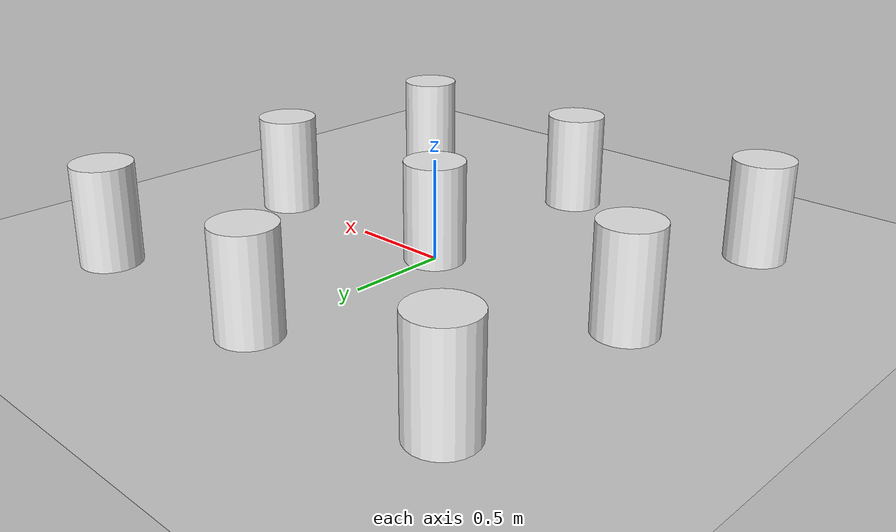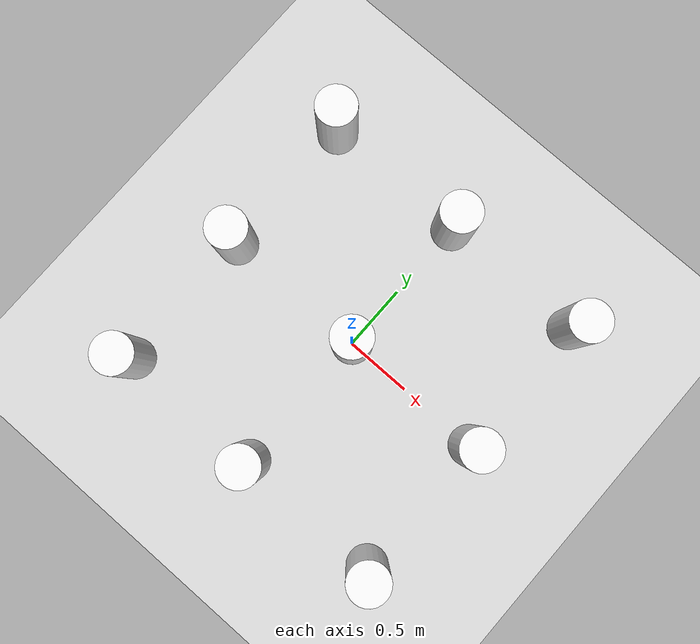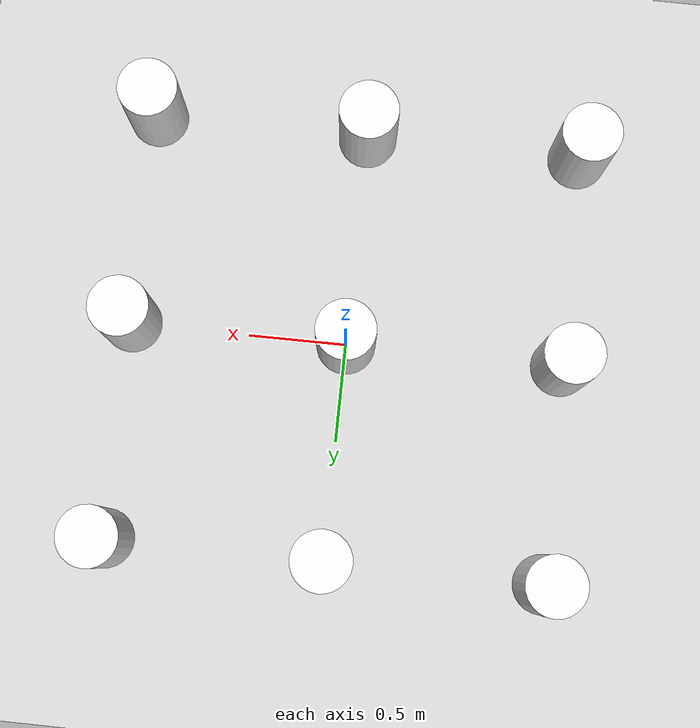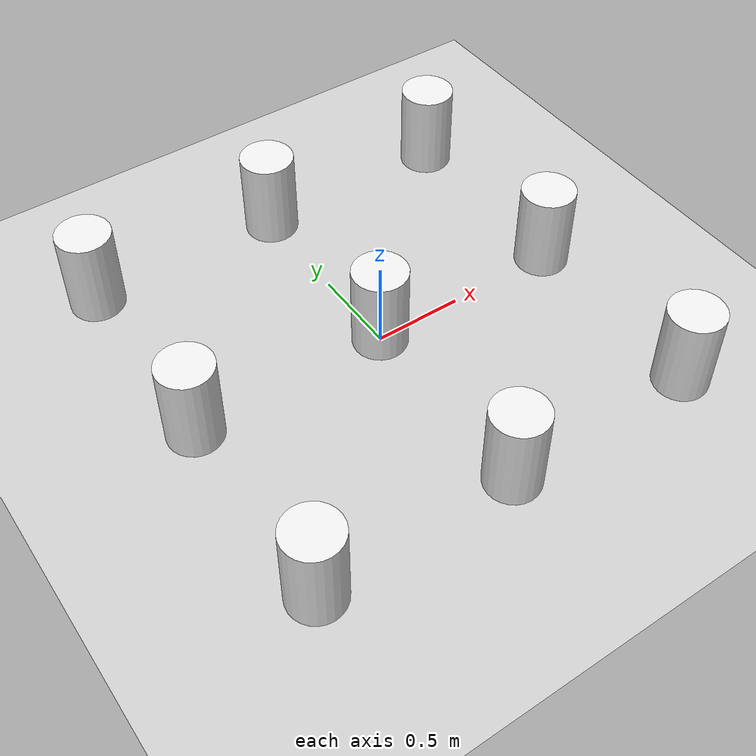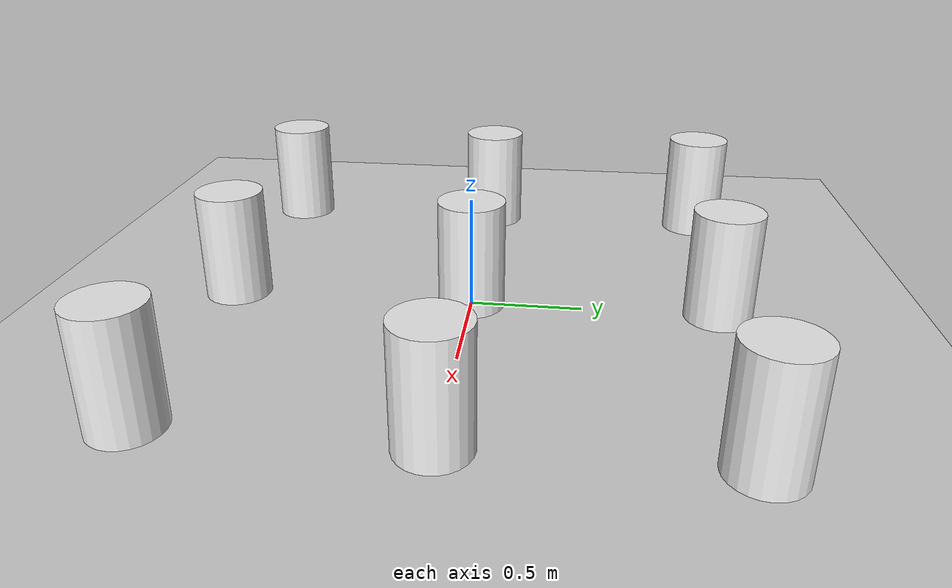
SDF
<sdf version='1.4'>
  <world name='default'>
    <!-- A global light source -->
    <include>
      <uri>model://sun</uri>
    </include>

    <!-- A ground plane -->
    <include>
      <uri>model://ground_plane</uri>
    </include>

    <physics type="ode">
      <real_time_update_rate>1000.0</real_time_update_rate>
      <max_step_size>0.001</max_step_size>
      <real_time_factor>1</real_time_factor>
      <ode>
        <solver>
          <type>quick</type>
          <iters>150</iters>
          <precon_iters>0</precon_iters>
          <sor>1.400000</sor>
          <use_dynamic_moi_rescaling>1</use_dynamic_moi_rescaling>
        </solver>
        <constraints>
          <cfm>0.00001</cfm>
          <erp>0.2</erp>
          <contact_max_correcting_vel>2000.000000</contact_max_correcting_vel>
          <contact_surface_layer>0.01000</contact_surface_layer>
        </constraints>
      </ode>
    </physics>

    <!-- Load world -->
    <include>
      <uri>model://turtlebot3_mech_project_world</uri>
    </include>

    <scene>
      <ambient>0.4 0.4 0.4 1</ambient>
      <background>0.7 0.7 0.7 1</background>
      <shadows>true</shadows>
    </scene>

    <gui fullscreen='0'>
      <camera name='user_camera'>
        <pose>0.8 0.0 12.0 0 1.5708 0</pose>
        <view_controller>orbit</view_controller>
      </camera>
    </gui>
  </world>
</sdf>

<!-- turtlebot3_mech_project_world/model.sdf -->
<sdf version='1.5'>
    <!-- Draw Circle -->
    <model name='ros_symbol'>
      <static>1</static>
      <link name='symbol'>
        <collision name='one_one'>
          <pose>-1.1 -1.1 0.25 0 0 0</pose>
          <geometry>
            <cylinder>
              <radius>0.15</radius>
              <length>0.5</length>
            </cylinder>
          </geometry>
          <max_contacts>10</max_contacts>
          <surface>
            <bounce/>
            <friction>
              <ode/>
            </friction>
            <contact>
              <ode/>
            </contact>
          </surface>
        </collision>

        <visual name='one_one'>
          <pose>-1.1 -1.1 0.25 0 0 0</pose>
          <geometry>
            <cylinder>
              <radius>0.15</radius>
              <length>0.5</length>
            </cylinder>
          </geometry>
          <material>
            <script>
              <uri>file://media/materials/scripts/gazebo.material</uri>
              <name>Gazebo/White</name>
            </script>
          </material>
        </visual>

        <collision name='one_two'>
          <pose>-1.1 0 0.25 0 0 0</pose>
          <geometry>
            <cylinder>
              <radius>0.15</radius>
              <length>0.5</length>
            </cylinder>
          </geometry>
          <max_contacts>10</max_contacts>
          <surface>
            <bounce/>
            <friction>
              <ode/>
            </friction>
            <contact>
              <ode/>
            </contact>
          </surface>
        </collision>

        <visual name='one_two'>
          <pose>-1.1 0 0.25 0 0 0</pose>
          <geometry>
            <cylinder>
              <radius>0.15</radius>
              <length>0.5</length>
            </cylinder>
          </geometry>
          <material>
            <script>
              <uri>file://media/materials/scripts/gazebo.material</uri>
              <name>Gazebo/White</name>
            </script>
          </material>
        </visual>

        <collision name='one_three'>
          <pose>-1.1 1.1 0.25 0 0 0</pose>
          <geometry>
            <cylinder>
              <radius>0.15</radius>
              <length>0.5</length>
            </cylinder>
          </geometry>
          <max_contacts>10</max_contacts>
          <surface>
            <bounce/>
            <friction>
              <ode/>
            </friction>
            <contact>
              <ode/>
            </contact>
          </surface>
        </collision>

        <visual name='one_three'>
          <pose>-1.1 1.1 0.25 0 0 0</pose>
          <geometry>
            <cylinder>
              <radius>0.15</radius>
              <length>0.5</length>
            </cylinder>
          </geometry>
          <material>
            <script>
              <uri>file://media/materials/scripts/gazebo.material</uri>
              <name>Gazebo/White</name>
            </script>
          </material>
        </visual>

        <collision name='two_one'>
          <pose>0 -1.1 0.25 0 0 0</pose>
          <geometry>
            <cylinder>
              <radius>0.15</radius>
              <length>0.5</length>
            </cylinder>
          </geometry>
          <max_contacts>10</max_contacts>
          <surface>
            <bounce/>
            <friction>
              <ode/>
            </friction>
            <contact>
              <ode/>
            </contact>
          </surface>
        </collision>

        <visual name='two_one'>
          <pose>0 -1.1 0.25 0 0 0</pose>
          <geometry>
            <cylinder>
              <radius>0.15</radius>
              <length>0.5</length>
            </cylinder>
          </geometry>
          <material>
            <script>
              <uri>file://media/materials/scripts/gazebo.material</uri>
              <name>Gazebo/White</name>
            </script>
          </material>
        </visual>

        <collision name='two_two'>
          <pose>0 0 0.25 0 0 0</pose>
          <geometry>
            <cylinder>
              <radius>0.15</radius>
              <length>0.5</length>
            </cylinder>
          </geometry>
          <max_contacts>10</max_contacts>
          <surface>
            <bounce/>
            <friction>
              <ode/>
            </friction>
            <contact>
              <ode/>
            </contact>
          </surface>
        </collision>

        <visual name='two_two'>
          <pose>0 0 0.25 0 0 0</pose>
          <geometry>
            <cylinder>
              <radius>0.15</radius>
              <length>0.5</length>
            </cylinder>
          </geometry>
          <material>
            <script>
              <uri>file://media/materials/scripts/gazebo.material</uri>
              <name>Gazebo/White</name>
            </script>
          </material>
        </visual>

        <collision name='two_three'>
          <pose>0 1.1 0.25 0 0 0</pose>
          <geometry>
            <cylinder>
              <radius>0.15</radius>
              <length>0.5</length>
            </cylinder>
          </geometry>
          <max_contacts>10</max_contacts>
          <surface>
            <bounce/>
            <friction>
              <ode/>
            </friction>
            <contact>
              <ode/>
            </contact>
          </surface>
        </collision>

        <visual name='two_three'>
          <pose>0 1.1 0.25 0 0 0</pose>
          <geometry>
            <cylinder>
              <radius>0.15</radius>
              <length>0.5</length>
            </cylinder>
          </geometry>
          <material>
            <script>
              <uri>file://media/materials/scripts/gazebo.material</uri>
              <name>Gazebo/White</name>
            </script>
          </material>
        </visual>

        <collision name='three_one'>
          <pose>1.1 -1.1 0.25 0 0 0</pose>
          <geometry>
            <cylinder>
              <radius>0.15</radius>
              <length>0.5</length>
            </cylinder>
          </geometry>
          <max_contacts>10</max_contacts>
          <surface>
            <bounce/>
            <friction>
              <ode/>
            </friction>
            <contact>
              <ode/>
            </contact>
          </surface>
        </collision>

        <visual name='three_one'>
          <pose>1.1 -1.1 0.25 0 0 0</pose>
          <geometry>
            <cylinder>
              <radius>0.15</radius>
              <length>0.5</length>
            </cylinder>
          </geometry>
          <material>
            <script>
              <uri>file://media/materials/scripts/gazebo.material</uri>
              <name>Gazebo/White</name>
            </script>
          </material>
        </visual>

        <collision name='three_two'>
          <pose>1.1 0 0.25 0 0 0</pose>
          <geometry>
            <cylinder>
              <radius>0.15</radius>
              <length>0.5</length>
            </cylinder>
          </geometry>
          <max_contacts>10</max_contacts>
          <surface>
            <bounce/>
            <friction>
              <ode/>
            </friction>
            <contact>
              <ode/>
            </contact>
          </surface>
        </collision>

        <visual name='three_two'>
          <pose>1.1 0 0.25 0 0 0</pose>
          <geometry>
            <cylinder>
              <radius>0.15</radius>
              <length>0.5</length>
            </cylinder>
          </geometry>
          <material>
            <script>
              <uri>file://media/materials/scripts/gazebo.material</uri>
              <name>Gazebo/White</name>
            </script>
          </material>
        </visual>

        <collision name='three_three'>
          <pose>1.1 1.1 0.25 0 0 0</pose>
          <geometry>
            <cylinder>
              <radius>0.15</radius>
              <length>0.5</length>
            </cylinder>
          </geometry>
          <max_contacts>10</max_contacts>
          <surface>
            <bounce/>
            <friction>
              <ode/>
            </friction>
            <contact>
              <ode/>
            </contact>
          </surface>
        </collision>

        <visual name='three_three'>
          <pose>1.1 1.1 0.25 0 0 0</pose>
          <geometry>
            <cylinder>
              <radius>0.15</radius>
              <length>0.5</length>
            </cylinder>
          </geometry>
          <material>
            <script>
              <uri>file://media/materials/scripts/gazebo.material</uri>
              <name>Gazebo/White</name>
            </script>
          </material>
        </visual>

    </link>
  </model>
</sdf>
